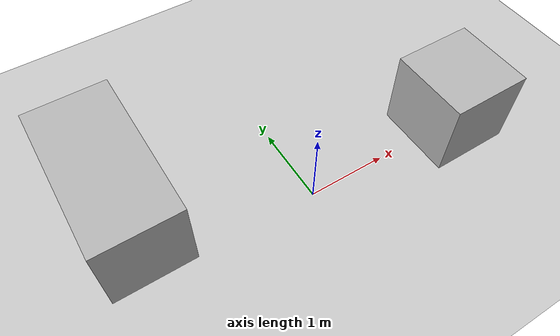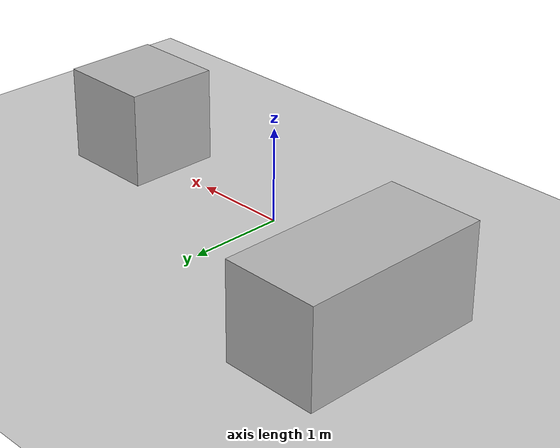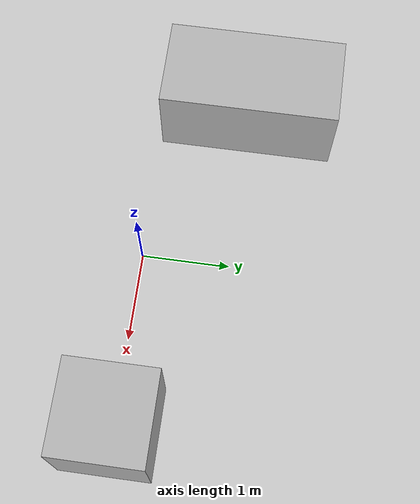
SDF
<?xml version="1.0"?>

<sdf version="1.6">

<world name="my_world">

  <include>
    <uri>model://ground_plane</uri>
  </include>

  <include>
    <uri>model://sun</uri>
  </include>

  <!-- Box obstacle 1 -->
  <model name="box1">
    <static>true</static>
    <pose>2 0 0.5 0 0 0</pose>

    <link name="link">
      <visual name="visual">
        <geometry>
          <box>
            <size>1 1 1</size>
          </box>
        </geometry>
      </visual>

      <collision name="collision">
        <geometry>
          <box>
            <size>1 1 1</size>
          </box>
        </geometry>
      </collision>
    </link>

  </model>

  <!-- Box obstacle 2 -->
  <model name="box2">
    <static>true</static>
    <pose>-2 1 0.5 0 0 0</pose>

    <link name="link">

      <visual name="visual">
        <geometry>
          <box>
            <size>1 2 1</size>
          </box>
        </geometry>
      </visual>

      <collision name="collision">
        <geometry>
          <box>
            <size>1 2 1</size>
          </box>
        </geometry>
      </collision>

    </link>

  </model>

</world>

</sdf>
